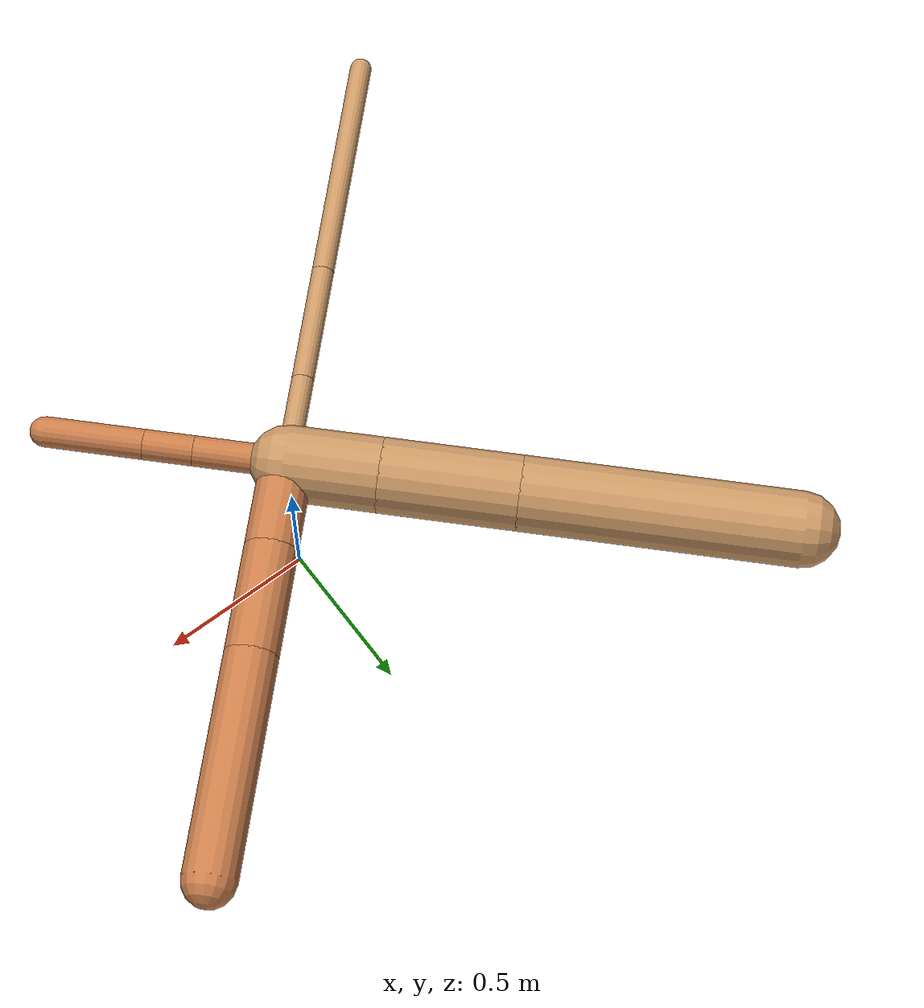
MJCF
<?xml version="1.0" ?>
<mujoco model="ant">

	<compiler angle="degree" coordinate="local" inertiafromgeom="true"/>

	<option integrator="RK4" timestep="0.01"/>

	<custom>

		<numeric data="0.0 0.0 0.55 1.0 0.0 0.0 0.0 0.0 1.0 0.0 -1.0 0.0 -1.0 0.0 1.0" name="init_qpos"/>

	</custom>

	<default>

		<joint armature="1" damping="1" limited="true"/>

		<geom conaffinity="0" condim="3" density="5.0" friction="1.5 0.1 0.1" margin="0.01" rgba="0.8 0.6 0.4 1"/>

	</default>

	<worldbody>

		<body name="torso" pos="0 0 0.75">

			<geom name="torso_geom" pos="0 0 0" size="0.0899385458791899" type="sphere"/>

			<!--joint armature="0" damping="0" limited="false" margin="0.01" name="root" pos="0 0 0" type="free"/-->

			<body name="front_left_leg" pos="0 0 0">

				<geom fromto="0 0 0 0.2 0.2 0" name="aux_1_geom" size="0.0811451716126277" type="capsule" rgba=".8 .5 .3 1"/>

				<body name="aux_1" pos="0.2 0.2 0">

					<joint axis="0 0 1" name="hip_1" pos="0.0 0.0 0.0" range="-40 40" type="hinge"/>

					<geom fromto="0 0 0 0.23745150633416834 0.23745150633416834 0" name="left_leg_geom" size="0.0811451716126277" type="capsule" rgba=".8 .5 .3 1"/>

					<body pos="0.23745150633416834 0.23745150633416834 0" name="front_left_foot">

						<joint axis="-1 1 0" name="ankle_1" pos="0.0 0.0 0.0" range="30 100" type="hinge"/>

						<geom fromto="0 0 0 0.4749030126683367 0.4749030126683367 0" name="left_ankle_geom" size="0.0811451716126277" type="capsule" rgba=".8 .5 .3 1"/>

					</body>

				</body>

			</body>

			<body name="front_right_leg" pos="0 0 0">

				<geom fromto="0 0 0 -0.2 0.2 0" name="aux_2_geom" size="0.11487839102956361" type="capsule"/>

				<body name="aux_2" pos="-0.2 0.2 0">

					<joint axis="0 0 1" name="hip_2" pos="0.0 0.0 0.0" range="-40 40" type="hinge"/>

					<geom fromto="0 0 0 -0.2969651342556178 0.2969651342556178 0" name="right_leg_geom" size="0.11487839102956361" type="capsule"/>

					<body pos="-0.2969651342556178 0.2969651342556178 0" name="front_right_foot">

						<joint axis="1 1 0" name="ankle_2" pos="0.0 0.0 0.0" range="-100 -30" type="hinge"/>

						<geom fromto="0 0 0 -0.5939302685112356 0.5939302685112356 0" name="right_ankle_geom" size="0.11487839102956361" type="capsule"/>

					</body>

				</body>

			</body>

			<body name="left_back_leg" pos="0 0 0">

				<geom fromto="0 0 0 -0.2 -0.2 0" name="aux_3_geom" size="0.03427484863014639" type="capsule"/>

				<body name="aux_3" pos="-0.2 -0.2 0">

					<joint axis="0 0 1" name="hip_3" pos="0.0 0.0 0.0" range="-40 40" type="hinge"/>

					<geom fromto="0 0 0 -0.2699748183191652 -0.2699748183191652 0" name="back_leg_geom" size="0.03427484863014639" type="capsule"/>

					<body pos="-0.2699748183191652 -0.2699748183191652 0" name="left_back_foot">

						<joint axis="-1 1 0" name="ankle_3" pos="0.0 0.0 0.0" range="-100 -30" type="hinge"/>

						<geom fromto="0 0 0 -0.5399496366383304 -0.5399496366383304 0" name="third_ankle_geom" size="0.03427484863014639" type="capsule"/>

					</body>

				</body>

			</body>

			<body name="right_back_leg" pos="0 0 0">

				<geom fromto="0 0 0 0.2 -0.2 0" name="aux_4_geom" size="0.04647756570158189" type="capsule" rgba=".8 .5 .3 1"/>

				<body name="aux_4" pos="0.2 -0.2 0">

					<joint axis="0 0 1" name="hip_4" pos="0.0 0.0 0.0" range="-40 40" type="hinge"/>

					<geom fromto="0 0 0 0.10770281646108591 -0.10770281646108591 0" name="rightback_leg_geom" size="0.04647756570158189" type="capsule" rgba=".8 .5 .3 1"/>

					<body pos="0.10770281646108591 -0.10770281646108591 0" name="right_back_foot">

						<joint axis="1 1 0" name="ankle_4" pos="0.0 0.0 0.0" range="30 100" type="hinge"/>

						<geom fromto="0 0 0 0.21540563292217182 -0.21540563292217182 0" name="fourth_ankle_geom" size="0.04647756570158189" type="capsule" rgba=".8 .5 .3 1"/>

					</body>

				</body>

			</body>

		</body>

	</worldbody>

	<actuator>

		<motor ctrllimited="true" ctrlrange="-1.0 1.0" joint="hip_4" gear="150"/>

		<motor ctrllimited="true" ctrlrange="-1.0 1.0" joint="ankle_4" gear="150"/>

		<motor ctrllimited="true" ctrlrange="-1.0 1.0" joint="hip_1" gear="150"/>

		<motor ctrllimited="true" ctrlrange="-1.0 1.0" joint="ankle_1" gear="150"/>

		<motor ctrllimited="true" ctrlrange="-1.0 1.0" joint="hip_2" gear="150"/>

		<motor ctrllimited="true" ctrlrange="-1.0 1.0" joint="ankle_2" gear="150"/>

		<motor ctrllimited="true" ctrlrange="-1.0 1.0" joint="hip_3" gear="150"/>

		<motor ctrllimited="true" ctrlrange="-1.0 1.0" joint="ankle_3" gear="150"/>

	</actuator>

</mujoco>
